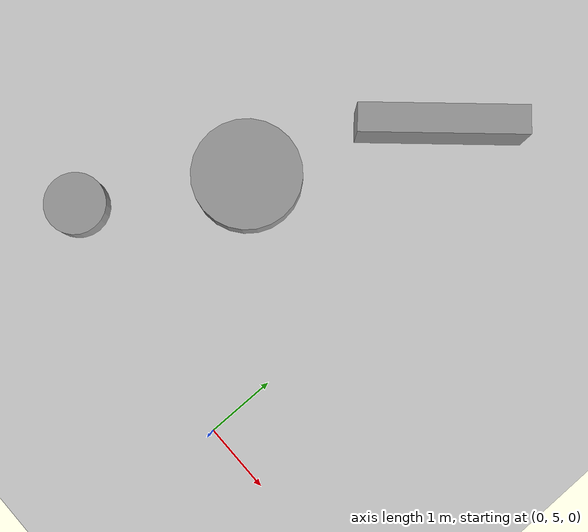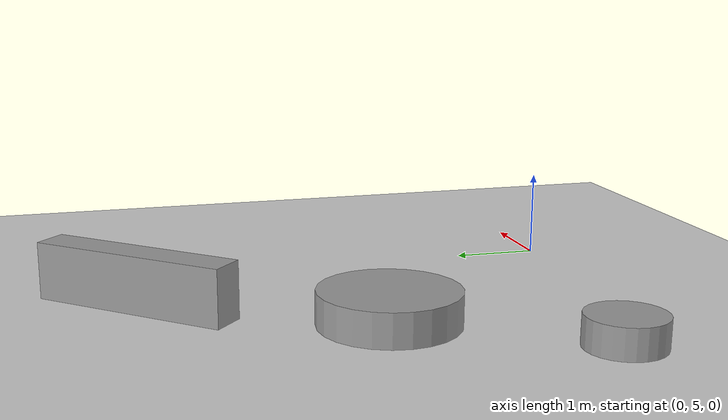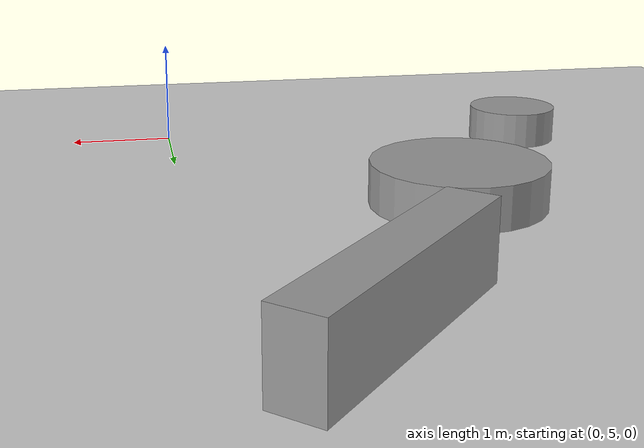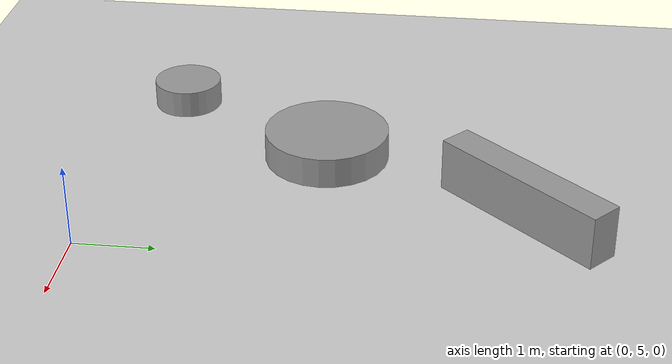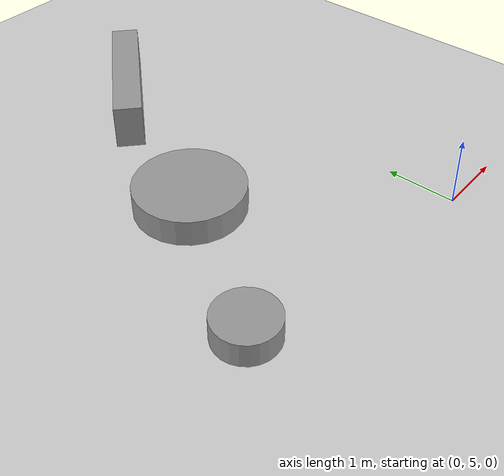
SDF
<sdf version="1.7">
 <world name="default">
  <model name="ground_plane">
   <static>1</static>
   <link name="link">
    <collision name="collision">
     <geometry><plane><normal>0 0 1</normal><size>100 100</size></plane></geometry>
     <surface>
      <contact><collide_bitmask>65535</collide_bitmask></contact>
      <friction><ode><mu>100</mu><mu2>50</mu2></ode></friction>
     </surface>
    </collision>
    <visual name="visual">
     <cast_shadows>0</cast_shadows>
     <geometry><plane><normal>0 0 1</normal><size>100 100</size></plane></geometry>
     <material>
      <script><uri>file://media/materials/scripts/gazebo.material</uri><name>Gazebo/Grey</name></script>
      <ambient>0.45 0.45 0.45 1</ambient>
     </material>
    </visual>
   </link>
  </model>
  <model name="unit_cylinder">
   <pose>-3.62713 5.60543 0.173935 -1e-06 1e-06 0.00514</pose>
   <link name="link">
    <inertial>
     <mass>1</mass>
     <inertia><ixx>0.145833</ixx><ixy>0</ixy><ixz>0</ixz><iyy>0.145833</iyy><iyz>0</iyz><izz>0.125</izz></inertia>
    </inertial>
    <collision name="collision">
     <geometry><cylinder><radius>0.439897</radius><length>0.347876</length></cylinder></geometry>
    </collision>
    <visual name="visual">
     <geometry><cylinder><radius>0.439897</radius><length>0.347876</length></cylinder></geometry>
     <material>
      <script><name>Gazebo/Grey</name><uri>file://media/materials/scripts/gazebo.material</uri></script>
      <ambient>0.15 0.15 0.15 1</ambient>
     </material>
    </visual>
   </link>
  </model>
  <model name="unit_cylinder_0">
   <pose>-2.36856 7.67119 0.194541 -4e-06 4e-06 9.4e-05</pose>
   <link name="link">
    <inertial>
     <mass>1</mass>
     <inertia><ixx>0.145833</ixx><ixy>0</ixy><ixz>0</ixz><iyy>0.145833</iyy><iyz>0</iyz><izz>0.125</izz></inertia>
    </inertial>
    <collision name="collision">
     <geometry><cylinder><radius>0.786321</radius><length>0.389089</length></cylinder></geometry>
    </collision>
    <visual name="visual">
     <geometry><cylinder><radius>0.786321</radius><length>0.389089</length></cylinder></geometry>
     <material>
      <script><name>Gazebo/Grey</name><uri>file://media/materials/scripts/gazebo.material</uri></script>
      <ambient>0.15 0.15 0.15 1</ambient>
     </material>
    </visual>
   </link>
  </model>
  <model name="unit_box">
   <pose>-1.1327 10.1892 0.328608 4.6e-05 0 -0.732535</pose>
   <link name="link">
    <inertial>
     <mass>1</mass>
     <inertia>
      <ixx>0.166667</ixx>
      <ixy>0</ixy>
      <ixz>0</ixz>
      <iyy>0.166667</iyy>
      <iyz>0</iyz>
      <izz>0.166667</izz>
     </inertia>
    </inertial>
    <collision name="collision"><geometry><box><size>0.416961 2.37935 0.657326</size></box></geometry></collision>
    <visual name="visual">
     <geometry><box><size>0.416961 2.37935 0.657326</size></box></geometry>
     <material>
      <script><name>Gazebo/Grey</name><uri>file://media/materials/scripts/gazebo.material</uri></script>
      <ambient>0.15 0.15 0.15 1</ambient>
     </material>
    </visual>
   </link>
  </model>
 </world>
</sdf>
